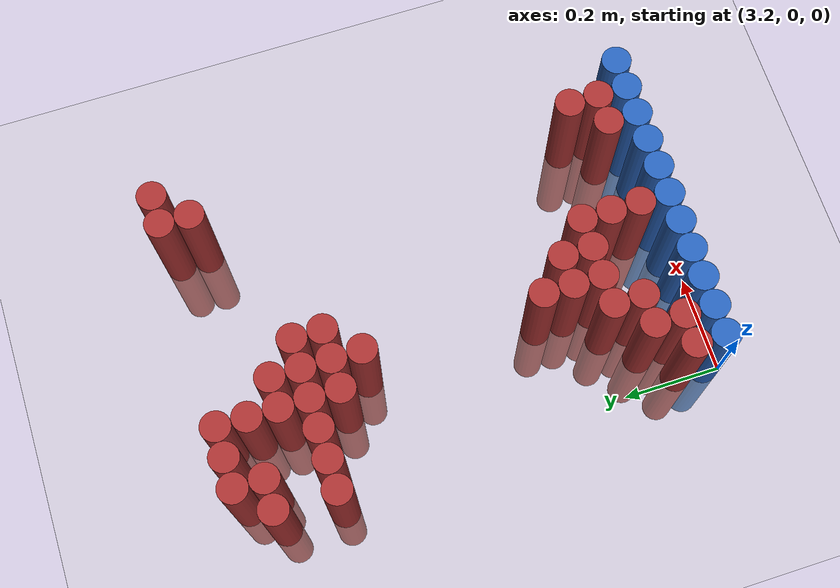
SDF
<sdf version="1.6">
 <world name="default">
  <model name="ground_plane">
   <static>1</static>
   <link name="link">
    <collision name="collision">
     <geometry><plane><normal>0 0 1</normal><size>100 100</size></plane></geometry>
     <surface><friction><ode><mu>100</mu><mu2>50</mu2></ode></friction></surface>
    </collision>
    <visual name="visual">
     <cast_shadows>0</cast_shadows>
     <geometry><plane><normal>0 0 1</normal><size>100 100</size></plane></geometry>
     <material>
      <script><uri>file://media/materials/scripts/gazebo.material</uri><name>Gazebo/Grey</name></script>
     </material>
    </visual>
   </link>
  </model>
  <model name="unit_cylinder_249">
   <static>1</static>
   <pose>3.210000 0.990000 0.000000 0.000000 0.000000 0.000000</pose>
   <link name="link">
    <inertial>
     <mass>1</mass>
     <inertia><ixx>0.145833</ixx><ixy>0</ixy><ixz>0</ixz><iyy>0.145833</iyy><iyz>0</iyz><izz>0.125</izz></inertia>
    </inertial>
    <collision name="collision">
     <geometry><cylinder><radius>0.030000</radius><length>0.5</length></cylinder></geometry>
    </collision>
    <visual name="visual">
     <geometry><cylinder><radius>0.030000</radius><length>0.5</length></cylinder></geometry>
     <material>
      <ambient>0.648000 0.192000 0.192000 1</ambient>
      <diffuse>0.648000 0.192000 0.192000 1</diffuse>
     </material>
     <material>
      <script><name>Gazebo/Grey</name><uri>file://media/materials/scripts/gazebo.material</uri></script>
     </material>
    </visual>
   </link>
  </model>
  <model name="unit_cylinder_250">
   <static>1</static>
   <pose>3.270000 0.990000 0.000000 0.000000 0.000000 0.000000</pose>
   <link name="link">
    <inertial>
     <mass>1</mass>
     <inertia><ixx>0.145833</ixx><ixy>0</ixy><ixz>0</ixz><iyy>0.145833</iyy><iyz>0</iyz><izz>0.125</izz></inertia>
    </inertial>
    <collision name="collision">
     <geometry><cylinder><radius>0.030000</radius><length>0.5</length></cylinder></geometry>
    </collision>
    <visual name="visual">
     <geometry><cylinder><radius>0.030000</radius><length>0.5</length></cylinder></geometry>
     <material>
      <ambient>0.648000 0.192000 0.192000 1</ambient>
      <diffuse>0.648000 0.192000 0.192000 1</diffuse>
     </material>
     <material>
      <script><name>Gazebo/Grey</name><uri>file://media/materials/scripts/gazebo.material</uri></script>
     </material>
    </visual>
   </link>
  </model>
  <model name="unit_cylinder_251">
   <static>1</static>
   <pose>3.330000 0.990000 0.000000 0.000000 0.000000 0.000000</pose>
   <link name="link">
    <inertial>
     <mass>1</mass>
     <inertia><ixx>0.145833</ixx><ixy>0</ixy><ixz>0</ixz><iyy>0.145833</iyy><iyz>0</iyz><izz>0.125</izz></inertia>
    </inertial>
    <collision name="collision">
     <geometry><cylinder><radius>0.030000</radius><length>0.5</length></cylinder></geometry>
    </collision>
    <visual name="visual">
     <geometry><cylinder><radius>0.030000</radius><length>0.5</length></cylinder></geometry>
     <material>
      <ambient>0.648000 0.192000 0.192000 1</ambient>
      <diffuse>0.648000 0.192000 0.192000 1</diffuse>
     </material>
     <material>
      <script><name>Gazebo/Grey</name><uri>file://media/materials/scripts/gazebo.material</uri></script>
     </material>
    </visual>
   </link>
  </model>
  <model name="unit_cylinder_252">
   <static>1</static>
   <pose>3.750000 0.990000 0.000000 0.000000 0.000000 0.000000</pose>
   <link name="link">
    <inertial>
     <mass>1</mass>
     <inertia><ixx>0.145833</ixx><ixy>0</ixy><ixz>0</ixz><iyy>0.145833</iyy><iyz>0</iyz><izz>0.125</izz></inertia>
    </inertial>
    <collision name="collision">
     <geometry><cylinder><radius>0.030000</radius><length>0.5</length></cylinder></geometry>
    </collision>
    <visual name="visual">
     <geometry><cylinder><radius>0.030000</radius><length>0.5</length></cylinder></geometry>
     <material>
      <ambient>0.648000 0.192000 0.192000 1</ambient>
      <diffuse>0.648000 0.192000 0.192000 1</diffuse>
     </material>
     <material>
      <script><name>Gazebo/Grey</name><uri>file://media/materials/scripts/gazebo.material</uri></script>
     </material>
    </visual>
   </link>
  </model>
  <model name="unit_cylinder_253">
   <static>1</static>
   <pose>3.810000 0.990000 0.000000 0.000000 0.000000 0.000000</pose>
   <link name="link">
    <inertial>
     <mass>1</mass>
     <inertia><ixx>0.145833</ixx><ixy>0</ixy><ixz>0</ixz><iyy>0.145833</iyy><iyz>0</iyz><izz>0.125</izz></inertia>
    </inertial>
    <collision name="collision">
     <geometry><cylinder><radius>0.030000</radius><length>0.5</length></cylinder></geometry>
    </collision>
    <visual name="visual">
     <geometry><cylinder><radius>0.030000</radius><length>0.5</length></cylinder></geometry>
     <material>
      <ambient>0.648000 0.192000 0.192000 1</ambient>
      <diffuse>0.648000 0.192000 0.192000 1</diffuse>
     </material>
     <material>
      <script><name>Gazebo/Grey</name><uri>file://media/materials/scripts/gazebo.material</uri></script>
     </material>
    </visual>
   </link>
  </model>
  <model name="unit_cylinder_264">
   <static>1</static>
   <pose>3.150000 0.930000 0.000000 0.000000 0.000000 0.000000</pose>
   <link name="link">
    <inertial>
     <mass>1</mass>
     <inertia><ixx>0.145833</ixx><ixy>0</ixy><ixz>0</ixz><iyy>0.145833</iyy><iyz>0</iyz><izz>0.125</izz></inertia>
    </inertial>
    <collision name="collision">
     <geometry><cylinder><radius>0.030000</radius><length>0.5</length></cylinder></geometry>
    </collision>
    <visual name="visual">
     <geometry><cylinder><radius>0.030000</radius><length>0.5</length></cylinder></geometry>
     <material>
      <ambient>0.648000 0.192000 0.192000 1</ambient>
      <diffuse>0.648000 0.192000 0.192000 1</diffuse>
     </material>
     <material>
      <script><name>Gazebo/Grey</name><uri>file://media/materials/scripts/gazebo.material</uri></script>
     </material>
    </visual>
   </link>
  </model>
  <model name="unit_cylinder_265">
   <static>1</static>
   <pose>3.210000 0.930000 0.000000 0.000000 0.000000 0.000000</pose>
   <link name="link">
    <inertial>
     <mass>1</mass>
     <inertia><ixx>0.145833</ixx><ixy>0</ixy><ixz>0</ixz><iyy>0.145833</iyy><iyz>0</iyz><izz>0.125</izz></inertia>
    </inertial>
    <collision name="collision">
     <geometry><cylinder><radius>0.030000</radius><length>0.5</length></cylinder></geometry>
    </collision>
    <visual name="visual">
     <geometry><cylinder><radius>0.030000</radius><length>0.5</length></cylinder></geometry>
     <material>
      <ambient>0.648000 0.192000 0.192000 1</ambient>
      <diffuse>0.648000 0.192000 0.192000 1</diffuse>
     </material>
     <material>
      <script><name>Gazebo/Grey</name><uri>file://media/materials/scripts/gazebo.material</uri></script>
     </material>
    </visual>
   </link>
  </model>
  <model name="unit_cylinder_266">
   <static>1</static>
   <pose>3.330000 0.930000 0.000000 0.000000 0.000000 0.000000</pose>
   <link name="link">
    <inertial>
     <mass>1</mass>
     <inertia><ixx>0.145833</ixx><ixy>0</ixy><ixz>0</ixz><iyy>0.145833</iyy><iyz>0</iyz><izz>0.125</izz></inertia>
    </inertial>
    <collision name="collision">
     <geometry><cylinder><radius>0.030000</radius><length>0.5</length></cylinder></geometry>
    </collision>
    <visual name="visual">
     <geometry><cylinder><radius>0.030000</radius><length>0.5</length></cylinder></geometry>
     <material>
      <ambient>0.648000 0.192000 0.192000 1</ambient>
      <diffuse>0.648000 0.192000 0.192000 1</diffuse>
     </material>
     <material>
      <script><name>Gazebo/Grey</name><uri>file://media/materials/scripts/gazebo.material</uri></script>
     </material>
    </visual>
   </link>
  </model>
  <model name="unit_cylinder_267">
   <static>1</static>
   <pose>3.750000 0.930000 0.000000 0.000000 0.000000 0.000000</pose>
   <link name="link">
    <inertial>
     <mass>1</mass>
     <inertia><ixx>0.145833</ixx><ixy>0</ixy><ixz>0</ixz><iyy>0.145833</iyy><iyz>0</iyz><izz>0.125</izz></inertia>
    </inertial>
    <collision name="collision">
     <geometry><cylinder><radius>0.030000</radius><length>0.5</length></cylinder></geometry>
    </collision>
    <visual name="visual">
     <geometry><cylinder><radius>0.030000</radius><length>0.5</length></cylinder></geometry>
     <material>
      <ambient>0.648000 0.192000 0.192000 1</ambient>
      <diffuse>0.648000 0.192000 0.192000 1</diffuse>
     </material>
     <material>
      <script><name>Gazebo/Grey</name><uri>file://media/materials/scripts/gazebo.material</uri></script>
     </material>
    </visual>
   </link>
  </model>
  <model name="unit_cylinder_277">
   <static>1</static>
   <pose>3.330000 0.870000 0.000000 0.000000 0.000000 0.000000</pose>
   <link name="link">
    <inertial>
     <mass>1</mass>
     <inertia><ixx>0.145833</ixx><ixy>0</ixy><ixz>0</ixz><iyy>0.145833</iyy><iyz>0</iyz><izz>0.125</izz></inertia>
    </inertial>
    <collision name="collision">
     <geometry><cylinder><radius>0.030000</radius><length>0.5</length></cylinder></geometry>
    </collision>
    <visual name="visual">
     <geometry><cylinder><radius>0.030000</radius><length>0.5</length></cylinder></geometry>
     <material>
      <ambient>0.648000 0.192000 0.192000 1</ambient>
      <diffuse>0.648000 0.192000 0.192000 1</diffuse>
     </material>
     <material>
      <script><name>Gazebo/Grey</name><uri>file://media/materials/scripts/gazebo.material</uri></script>
     </material>
    </visual>
   </link>
  </model>
  <model name="unit_cylinder_278">
   <static>1</static>
   <pose>3.390000 0.870000 0.000000 0.000000 0.000000 0.000000</pose>
   <link name="link">
    <inertial>
     <mass>1</mass>
     <inertia><ixx>0.145833</ixx><ixy>0</ixy><ixz>0</ixz><iyy>0.145833</iyy><iyz>0</iyz><izz>0.125</izz></inertia>
    </inertial>
    <collision name="collision">
     <geometry><cylinder><radius>0.030000</radius><length>0.5</length></cylinder></geometry>
    </collision>
    <visual name="visual">
     <geometry><cylinder><radius>0.030000</radius><length>0.5</length></cylinder></geometry>
     <material>
      <ambient>0.648000 0.192000 0.192000 1</ambient>
      <diffuse>0.648000 0.192000 0.192000 1</diffuse>
     </material>
     <material>
      <script><name>Gazebo/Grey</name><uri>file://media/materials/scripts/gazebo.material</uri></script>
     </material>
    </visual>
   </link>
  </model>
  <model name="unit_cylinder_283">
   <static>1</static>
   <pose>3.150000 0.810000 0.000000 0.000000 0.000000 0.000000</pose>
   <link name="link">
    <inertial>
     <mass>1</mass>
     <inertia><ixx>0.145833</ixx><ixy>0</ixy><ixz>0</ixz><iyy>0.145833</iyy><iyz>0</iyz><izz>0.125</izz></inertia>
    </inertial>
    <collision name="collision">
     <geometry><cylinder><radius>0.030000</radius><length>0.5</length></cylinder></geometry>
    </collision>
    <visual name="visual">
     <geometry><cylinder><radius>0.030000</radius><length>0.5</length></cylinder></geometry>
     <material>
      <ambient>0.648000 0.192000 0.192000 1</ambient>
      <diffuse>0.648000 0.192000 0.192000 1</diffuse>
     </material>
     <material>
      <script><name>Gazebo/Grey</name><uri>file://media/materials/scripts/gazebo.material</uri></script>
     </material>
    </visual>
   </link>
  </model>
  <model name="unit_cylinder_284">
   <static>1</static>
   <pose>3.210000 0.810000 0.000000 0.000000 0.000000 0.000000</pose>
   <link name="link">
    <inertial>
     <mass>1</mass>
     <inertia><ixx>0.145833</ixx><ixy>0</ixy><ixz>0</ixz><iyy>0.145833</iyy><iyz>0</iyz><izz>0.125</izz></inertia>
    </inertial>
    <collision name="collision">
     <geometry><cylinder><radius>0.030000</radius><length>0.5</length></cylinder></geometry>
    </collision>
    <visual name="visual">
     <geometry><cylinder><radius>0.030000</radius><length>0.5</length></cylinder></geometry>
     <material>
      <ambient>0.648000 0.192000 0.192000 1</ambient>
      <diffuse>0.648000 0.192000 0.192000 1</diffuse>
     </material>
     <material>
      <script><name>Gazebo/Grey</name><uri>file://media/materials/scripts/gazebo.material</uri></script>
     </material>
    </visual>
   </link>
  </model>
  <model name="unit_cylinder_285">
   <static>1</static>
   <pose>3.270000 0.810000 0.000000 0.000000 0.000000 0.000000</pose>
   <link name="link">
    <inertial>
     <mass>1</mass>
     <inertia><ixx>0.145833</ixx><ixy>0</ixy><ixz>0</ixz><iyy>0.145833</iyy><iyz>0</iyz><izz>0.125</izz></inertia>
    </inertial>
    <collision name="collision">
     <geometry><cylinder><radius>0.030000</radius><length>0.5</length></cylinder></geometry>
    </collision>
    <visual name="visual">
     <geometry><cylinder><radius>0.030000</radius><length>0.5</length></cylinder></geometry>
     <material>
      <ambient>0.648000 0.192000 0.192000 1</ambient>
      <diffuse>0.648000 0.192000 0.192000 1</diffuse>
     </material>
     <material>
      <script><name>Gazebo/Grey</name><uri>file://media/materials/scripts/gazebo.material</uri></script>
     </material>
    </visual>
   </link>
  </model>
  <model name="unit_cylinder_286">
   <static>1</static>
   <pose>3.330000 0.810000 0.000000 0.000000 0.000000 0.000000</pose>
   <link name="link">
    <inertial>
     <mass>1</mass>
     <inertia><ixx>0.145833</ixx><ixy>0</ixy><ixz>0</ixz><iyy>0.145833</iyy><iyz>0</iyz><izz>0.125</izz></inertia>
    </inertial>
    <collision name="collision">
     <geometry><cylinder><radius>0.030000</radius><length>0.5</length></cylinder></geometry>
    </collision>
    <visual name="visual">
     <geometry><cylinder><radius>0.030000</radius><length>0.5</length></cylinder></geometry>
     <material>
      <ambient>0.648000 0.192000 0.192000 1</ambient>
      <diffuse>0.648000 0.192000 0.192000 1</diffuse>
     </material>
     <material>
      <script><name>Gazebo/Grey</name><uri>file://media/materials/scripts/gazebo.material</uri></script>
     </material>
    </visual>
   </link>
  </model>
  <model name="unit_cylinder_287">
   <static>1</static>
   <pose>3.390000 0.810000 0.000000 0.000000 0.000000 0.000000</pose>
   <link name="link">
    <inertial>
     <mass>1</mass>
     <inertia><ixx>0.145833</ixx><ixy>0</ixy><ixz>0</ixz><iyy>0.145833</iyy><iyz>0</iyz><izz>0.125</izz></inertia>
    </inertial>
    <collision name="collision">
     <geometry><cylinder><radius>0.030000</radius><length>0.5</length></cylinder></geometry>
    </collision>
    <visual name="visual">
     <geometry><cylinder><radius>0.030000</radius><length>0.5</length></cylinder></geometry>
     <material>
      <ambient>0.648000 0.192000 0.192000 1</ambient>
      <diffuse>0.648000 0.192000 0.192000 1</diffuse>
     </material>
     <material>
      <script><name>Gazebo/Grey</name><uri>file://media/materials/scripts/gazebo.material</uri></script>
     </material>
    </visual>
   </link>
  </model>
  <model name="unit_cylinder_288">
   <static>1</static>
   <pose>3.450000 0.810000 0.000000 0.000000 0.000000 0.000000</pose>
   <link name="link">
    <inertial>
     <mass>1</mass>
     <inertia><ixx>0.145833</ixx><ixy>0</ixy><ixz>0</ixz><iyy>0.145833</iyy><iyz>0</iyz><izz>0.125</izz></inertia>
    </inertial>
    <collision name="collision">
     <geometry><cylinder><radius>0.030000</radius><length>0.5</length></cylinder></geometry>
    </collision>
    <visual name="visual">
     <geometry><cylinder><radius>0.030000</radius><length>0.5</length></cylinder></geometry>
     <material>
      <ambient>0.648000 0.192000 0.192000 1</ambient>
      <diffuse>0.648000 0.192000 0.192000 1</diffuse>
     </material>
     <material>
      <script><name>Gazebo/Grey</name><uri>file://media/materials/scripts/gazebo.material</uri></script>
     </material>
    </visual>
   </link>
  </model>
  <model name="unit_cylinder_291">
   <static>1</static>
   <pose>3.330000 0.750000 0.000000 0.000000 0.000000 0.000000</pose>
   <link name="link">
    <inertial>
     <mass>1</mass>
     <inertia><ixx>0.145833</ixx><ixy>0</ixy><ixz>0</ixz><iyy>0.145833</iyy><iyz>0</iyz><izz>0.125</izz></inertia>
    </inertial>
    <collision name="collision">
     <geometry><cylinder><radius>0.030000</radius><length>0.5</length></cylinder></geometry>
    </collision>
    <visual name="visual">
     <geometry><cylinder><radius>0.030000</radius><length>0.5</length></cylinder></geometry>
     <material>
      <ambient>0.648000 0.192000 0.192000 1</ambient>
      <diffuse>0.648000 0.192000 0.192000 1</diffuse>
     </material>
     <material>
      <script><name>Gazebo/Grey</name><uri>file://media/materials/scripts/gazebo.material</uri></script>
     </material>
    </visual>
   </link>
  </model>
  <model name="unit_cylinder_292">
   <static>1</static>
   <pose>3.390000 0.750000 0.000000 0.000000 0.000000 0.000000</pose>
   <link name="link">
    <inertial>
     <mass>1</mass>
     <inertia><ixx>0.145833</ixx><ixy>0</ixy><ixz>0</ixz><iyy>0.145833</iyy><iyz>0</iyz><izz>0.125</izz></inertia>
    </inertial>
    <collision name="collision">
     <geometry><cylinder><radius>0.030000</radius><length>0.5</length></cylinder></geometry>
    </collision>
    <visual name="visual">
     <geometry><cylinder><radius>0.030000</radius><length>0.5</length></cylinder></geometry>
     <material>
      <ambient>0.648000 0.192000 0.192000 1</ambient>
      <diffuse>0.648000 0.192000 0.192000 1</diffuse>
     </material>
     <material>
      <script><name>Gazebo/Grey</name><uri>file://media/materials/scripts/gazebo.material</uri></script>
     </material>
    </visual>
   </link>
  </model>
  <model name="unit_cylinder_293">
   <static>1</static>
   <pose>3.450000 0.750000 0.000000 0.000000 0.000000 0.000000</pose>
   <link name="link">
    <inertial>
     <mass>1</mass>
     <inertia><ixx>0.145833</ixx><ixy>0</ixy><ixz>0</ixz><iyy>0.145833</iyy><iyz>0</iyz><izz>0.125</izz></inertia>
    </inertial>
    <collision name="collision">
     <geometry><cylinder><radius>0.030000</radius><length>0.5</length></cylinder></geometry>
    </collision>
    <visual name="visual">
     <geometry><cylinder><radius>0.030000</radius><length>0.5</length></cylinder></geometry>
     <material>
      <ambient>0.648000 0.192000 0.192000 1</ambient>
      <diffuse>0.648000 0.192000 0.192000 1</diffuse>
     </material>
     <material>
      <script><name>Gazebo/Grey</name><uri>file://media/materials/scripts/gazebo.material</uri></script>
     </material>
    </visual>
   </link>
  </model>
  <model name="unit_cylinder_294">
   <static>1</static>
   <pose>3.390000 0.690000 0.000000 0.000000 0.000000 0.000000</pose>
   <link name="link">
    <inertial>
     <mass>1</mass>
     <inertia><ixx>0.145833</ixx><ixy>0</ixy><ixz>0</ixz><iyy>0.145833</iyy><iyz>0</iyz><izz>0.125</izz></inertia>
    </inertial>
    <collision name="collision">
     <geometry><cylinder><radius>0.030000</radius><length>0.5</length></cylinder></geometry>
    </collision>
    <visual name="visual">
     <geometry><cylinder><radius>0.030000</radius><length>0.5</length></cylinder></geometry>
     <material>
      <ambient>0.648000 0.192000 0.192000 1</ambient>
      <diffuse>0.648000 0.192000 0.192000 1</diffuse>
     </material>
     <material>
      <script><name>Gazebo/Grey</name><uri>file://media/materials/scripts/gazebo.material</uri></script>
     </material>
    </visual>
   </link>
  </model>
  <model name="unit_cylinder_307">
   <static>1</static>
   <pose>3.390000 0.330000 0.000000 0.000000 0.000000 0.000000</pose>
   <link name="link">
    <inertial>
     <mass>1</mass>
     <inertia><ixx>0.145833</ixx><ixy>0</ixy><ixz>0</ixz><iyy>0.145833</iyy><iyz>0</iyz><izz>0.125</izz></inertia>
    </inertial>
    <collision name="collision">
     <geometry><cylinder><radius>0.030000</radius><length>0.5</length></cylinder></geometry>
    </collision>
    <visual name="visual">
     <geometry><cylinder><radius>0.030000</radius><length>0.5</length></cylinder></geometry>
     <material>
      <ambient>0.648000 0.192000 0.192000 1</ambient>
      <diffuse>0.648000 0.192000 0.192000 1</diffuse>
     </material>
     <material>
      <script><name>Gazebo/Grey</name><uri>file://media/materials/scripts/gazebo.material</uri></script>
     </material>
    </visual>
   </link>
  </model>
  <model name="unit_cylinder_310">
   <static>1</static>
   <pose>3.390000 0.270000 0.000000 0.000000 0.000000 0.000000</pose>
   <link name="link">
    <inertial>
     <mass>1</mass>
     <inertia><ixx>0.145833</ixx><ixy>0</ixy><ixz>0</ixz><iyy>0.145833</iyy><iyz>0</iyz><izz>0.125</izz></inertia>
    </inertial>
    <collision name="collision">
     <geometry><cylinder><radius>0.030000</radius><length>0.5</length></cylinder></geometry>
    </collision>
    <visual name="visual">
     <geometry><cylinder><radius>0.030000</radius><length>0.5</length></cylinder></geometry>
     <material>
      <ambient>0.648000 0.192000 0.192000 1</ambient>
      <diffuse>0.648000 0.192000 0.192000 1</diffuse>
     </material>
     <material>
      <script><name>Gazebo/Grey</name><uri>file://media/materials/scripts/gazebo.material</uri></script>
     </material>
    </visual>
   </link>
  </model>
  <model name="unit_cylinder_311">
   <static>1</static>
   <pose>3.450000 0.270000 0.000000 0.000000 0.000000 0.000000</pose>
   <link name="link">
    <inertial>
     <mass>1</mass>
     <inertia><ixx>0.145833</ixx><ixy>0</ixy><ixz>0</ixz><iyy>0.145833</iyy><iyz>0</iyz><izz>0.125</izz></inertia>
    </inertial>
    <collision name="collision">
     <geometry><cylinder><radius>0.030000</radius><length>0.5</length></cylinder></geometry>
    </collision>
    <visual name="visual">
     <geometry><cylinder><radius>0.030000</radius><length>0.5</length></cylinder></geometry>
     <material>
      <ambient>0.648000 0.192000 0.192000 1</ambient>
      <diffuse>0.648000 0.192000 0.192000 1</diffuse>
     </material>
     <material>
      <script><name>Gazebo/Grey</name><uri>file://media/materials/scripts/gazebo.material</uri></script>
     </material>
    </visual>
   </link>
  </model>
  <model name="unit_cylinder_317">
   <static>1</static>
   <pose>3.330000 0.210000 0.000000 0.000000 0.000000 0.000000</pose>
   <link name="link">
    <inertial>
     <mass>1</mass>
     <inertia><ixx>0.145833</ixx><ixy>0</ixy><ixz>0</ixz><iyy>0.145833</iyy><iyz>0</iyz><izz>0.125</izz></inertia>
    </inertial>
    <collision name="collision">
     <geometry><cylinder><radius>0.030000</radius><length>0.5</length></cylinder></geometry>
    </collision>
    <visual name="visual">
     <geometry><cylinder><radius>0.030000</radius><length>0.5</length></cylinder></geometry>
     <material>
      <ambient>0.648000 0.192000 0.192000 1</ambient>
      <diffuse>0.648000 0.192000 0.192000 1</diffuse>
     </material>
     <material>
      <script><name>Gazebo/Grey</name><uri>file://media/materials/scripts/gazebo.material</uri></script>
     </material>
    </visual>
   </link>
  </model>
  <model name="unit_cylinder_318">
   <static>1</static>
   <pose>3.390000 0.210000 0.000000 0.000000 0.000000 0.000000</pose>
   <link name="link">
    <inertial>
     <mass>1</mass>
     <inertia><ixx>0.145833</ixx><ixy>0</ixy><ixz>0</ixz><iyy>0.145833</iyy><iyz>0</iyz><izz>0.125</izz></inertia>
    </inertial>
    <collision name="collision">
     <geometry><cylinder><radius>0.030000</radius><length>0.5</length></cylinder></geometry>
    </collision>
    <visual name="visual">
     <geometry><cylinder><radius>0.030000</radius><length>0.5</length></cylinder></geometry>
     <material>
      <ambient>0.648000 0.192000 0.192000 1</ambient>
      <diffuse>0.648000 0.192000 0.192000 1</diffuse>
     </material>
     <material>
      <script><name>Gazebo/Grey</name><uri>file://media/materials/scripts/gazebo.material</uri></script>
     </material>
    </visual>
   </link>
  </model>
  <model name="unit_cylinder_319">
   <static>1</static>
   <pose>3.450000 0.210000 0.000000 0.000000 0.000000 0.000000</pose>
   <link name="link">
    <inertial>
     <mass>1</mass>
     <inertia><ixx>0.145833</ixx><ixy>0</ixy><ixz>0</ixz><iyy>0.145833</iyy><iyz>0</iyz><izz>0.125</izz></inertia>
    </inertial>
    <collision name="collision">
     <geometry><cylinder><radius>0.030000</radius><length>0.5</length></cylinder></geometry>
    </collision>
    <visual name="visual">
     <geometry><cylinder><radius>0.030000</radius><length>0.5</length></cylinder></geometry>
     <material>
      <ambient>0.648000 0.192000 0.192000 1</ambient>
      <diffuse>0.648000 0.192000 0.192000 1</diffuse>
     </material>
     <material>
      <script><name>Gazebo/Grey</name><uri>file://media/materials/scripts/gazebo.material</uri></script>
     </material>
    </visual>
   </link>
  </model>
  <model name="unit_cylinder_320">
   <static>1</static>
   <pose>3.510000 0.210000 0.000000 0.000000 0.000000 0.000000</pose>
   <link name="link">
    <inertial>
     <mass>1</mass>
     <inertia><ixx>0.145833</ixx><ixy>0</ixy><ixz>0</ixz><iyy>0.145833</iyy><iyz>0</iyz><izz>0.125</izz></inertia>
    </inertial>
    <collision name="collision">
     <geometry><cylinder><radius>0.030000</radius><length>0.5</length></cylinder></geometry>
    </collision>
    <visual name="visual">
     <geometry><cylinder><radius>0.030000</radius><length>0.5</length></cylinder></geometry>
     <material>
      <ambient>0.648000 0.192000 0.192000 1</ambient>
      <diffuse>0.648000 0.192000 0.192000 1</diffuse>
     </material>
     <material>
      <script><name>Gazebo/Grey</name><uri>file://media/materials/scripts/gazebo.material</uri></script>
     </material>
    </visual>
   </link>
  </model>
  <model name="unit_cylinder_332">
   <static>1</static>
   <pose>3.270000 0.150000 0.000000 0.000000 0.000000 0.000000</pose>
   <link name="link">
    <inertial>
     <mass>1</mass>
     <inertia><ixx>0.145833</ixx><ixy>0</ixy><ixz>0</ixz><iyy>0.145833</iyy><iyz>0</iyz><izz>0.125</izz></inertia>
    </inertial>
    <collision name="collision">
     <geometry><cylinder><radius>0.030000</radius><length>0.5</length></cylinder></geometry>
    </collision>
    <visual name="visual">
     <geometry><cylinder><radius>0.030000</radius><length>0.5</length></cylinder></geometry>
     <material>
      <ambient>0.648000 0.192000 0.192000 1</ambient>
      <diffuse>0.648000 0.192000 0.192000 1</diffuse>
     </material>
     <material>
      <script><name>Gazebo/Grey</name><uri>file://media/materials/scripts/gazebo.material</uri></script>
     </material>
    </visual>
   </link>
  </model>
  <model name="unit_cylinder_333">
   <static>1</static>
   <pose>3.330000 0.150000 0.000000 0.000000 0.000000 0.000000</pose>
   <link name="link">
    <inertial>
     <mass>1</mass>
     <inertia><ixx>0.145833</ixx><ixy>0</ixy><ixz>0</ixz><iyy>0.145833</iyy><iyz>0</iyz><izz>0.125</izz></inertia>
    </inertial>
    <collision name="collision">
     <geometry><cylinder><radius>0.030000</radius><length>0.5</length></cylinder></geometry>
    </collision>
    <visual name="visual">
     <geometry><cylinder><radius>0.030000</radius><length>0.5</length></cylinder></geometry>
     <material>
      <ambient>0.648000 0.192000 0.192000 1</ambient>
      <diffuse>0.648000 0.192000 0.192000 1</diffuse>
     </material>
     <material>
      <script><name>Gazebo/Grey</name><uri>file://media/materials/scripts/gazebo.material</uri></script>
     </material>
    </visual>
   </link>
  </model>
  <model name="unit_cylinder_334">
   <static>1</static>
   <pose>3.510000 0.150000 0.000000 0.000000 0.000000 0.000000</pose>
   <link name="link">
    <inertial>
     <mass>1</mass>
     <inertia><ixx>0.145833</ixx><ixy>0</ixy><ixz>0</ixz><iyy>0.145833</iyy><iyz>0</iyz><izz>0.125</izz></inertia>
    </inertial>
    <collision name="collision">
     <geometry><cylinder><radius>0.030000</radius><length>0.5</length></cylinder></geometry>
    </collision>
    <visual name="visual">
     <geometry><cylinder><radius>0.030000</radius><length>0.5</length></cylinder></geometry>
     <material>
      <ambient>0.648000 0.192000 0.192000 1</ambient>
      <diffuse>0.648000 0.192000 0.192000 1</diffuse>
     </material>
     <material>
      <script><name>Gazebo/Grey</name><uri>file://media/materials/scripts/gazebo.material</uri></script>
     </material>
    </visual>
   </link>
  </model>
  <model name="unit_cylinder_335">
   <static>1</static>
   <pose>3.750000 0.150000 0.000000 0.000000 0.000000 0.000000</pose>
   <link name="link">
    <inertial>
     <mass>1</mass>
     <inertia><ixx>0.145833</ixx><ixy>0</ixy><ixz>0</ixz><iyy>0.145833</iyy><iyz>0</iyz><izz>0.125</izz></inertia>
    </inertial>
    <collision name="collision">
     <geometry><cylinder><radius>0.030000</radius><length>0.5</length></cylinder></geometry>
    </collision>
    <visual name="visual">
     <geometry><cylinder><radius>0.030000</radius><length>0.5</length></cylinder></geometry>
     <material>
      <ambient>0.648000 0.192000 0.192000 1</ambient>
      <diffuse>0.648000 0.192000 0.192000 1</diffuse>
     </material>
     <material>
      <script><name>Gazebo/Grey</name><uri>file://media/materials/scripts/gazebo.material</uri></script>
     </material>
    </visual>
   </link>
  </model>
  <model name="unit_cylinder_350">
   <static>1</static>
   <pose>3.210000 0.090000 0.000000 0.000000 0.000000 0.000000</pose>
   <link name="link">
    <inertial>
     <mass>1</mass>
     <inertia><ixx>0.145833</ixx><ixy>0</ixy><ixz>0</ixz><iyy>0.145833</iyy><iyz>0</iyz><izz>0.125</izz></inertia>
    </inertial>
    <collision name="collision">
     <geometry><cylinder><radius>0.030000</radius><length>0.5</length></cylinder></geometry>
    </collision>
    <visual name="visual">
     <geometry><cylinder><radius>0.030000</radius><length>0.5</length></cylinder></geometry>
     <material>
      <ambient>0.648000 0.192000 0.192000 1</ambient>
      <diffuse>0.648000 0.192000 0.192000 1</diffuse>
     </material>
     <material>
      <script><name>Gazebo/Grey</name><uri>file://media/materials/scripts/gazebo.material</uri></script>
     </material>
    </visual>
   </link>
  </model>
  <model name="unit_cylinder_351">
   <static>1</static>
   <pose>3.270000 0.090000 0.000000 0.000000 0.000000 0.000000</pose>
   <link name="link">
    <inertial>
     <mass>1</mass>
     <inertia><ixx>0.145833</ixx><ixy>0</ixy><ixz>0</ixz><iyy>0.145833</iyy><iyz>0</iyz><izz>0.125</izz></inertia>
    </inertial>
    <collision name="collision">
     <geometry><cylinder><radius>0.030000</radius><length>0.5</length></cylinder></geometry>
    </collision>
    <visual name="visual">
     <geometry><cylinder><radius>0.030000</radius><length>0.5</length></cylinder></geometry>
     <material>
      <ambient>0.648000 0.192000 0.192000 1</ambient>
      <diffuse>0.648000 0.192000 0.192000 1</diffuse>
     </material>
     <material>
      <script><name>Gazebo/Grey</name><uri>file://media/materials/scripts/gazebo.material</uri></script>
     </material>
    </visual>
   </link>
  </model>
  <model name="unit_cylinder_352">
   <static>1</static>
   <pose>3.510000 0.090000 0.000000 0.000000 0.000000 0.000000</pose>
   <link name="link">
    <inertial>
     <mass>1</mass>
     <inertia><ixx>0.145833</ixx><ixy>0</ixy><ixz>0</ixz><iyy>0.145833</iyy><iyz>0</iyz><izz>0.125</izz></inertia>
    </inertial>
    <collision name="collision">
     <geometry><cylinder><radius>0.030000</radius><length>0.5</length></cylinder></geometry>
    </collision>
    <visual name="visual">
     <geometry><cylinder><radius>0.030000</radius><length>0.5</length></cylinder></geometry>
     <material>
      <ambient>0.648000 0.192000 0.192000 1</ambient>
      <diffuse>0.648000 0.192000 0.192000 1</diffuse>
     </material>
     <material>
      <script><name>Gazebo/Grey</name><uri>file://media/materials/scripts/gazebo.material</uri></script>
     </material>
    </visual>
   </link>
  </model>
  <model name="unit_cylinder_353">
   <static>1</static>
   <pose>3.690000 0.090000 0.000000 0.000000 0.000000 0.000000</pose>
   <link name="link">
    <inertial>
     <mass>1</mass>
     <inertia><ixx>0.145833</ixx><ixy>0</ixy><ixz>0</ixz><iyy>0.145833</iyy><iyz>0</iyz><izz>0.125</izz></inertia>
    </inertial>
    <collision name="collision">
     <geometry><cylinder><radius>0.030000</radius><length>0.5</length></cylinder></geometry>
    </collision>
    <visual name="visual">
     <geometry><cylinder><radius>0.030000</radius><length>0.5</length></cylinder></geometry>
     <material>
      <ambient>0.648000 0.192000 0.192000 1</ambient>
      <diffuse>0.648000 0.192000 0.192000 1</diffuse>
     </material>
     <material>
      <script><name>Gazebo/Grey</name><uri>file://media/materials/scripts/gazebo.material</uri></script>
     </material>
    </visual>
   </link>
  </model>
  <model name="unit_cylinder_354">
   <static>1</static>
   <pose>3.750000 0.090000 0.000000 0.000000 0.000000 0.000000</pose>
   <link name="link">
    <inertial>
     <mass>1</mass>
     <inertia><ixx>0.145833</ixx><ixy>0</ixy><ixz>0</ixz><iyy>0.145833</iyy><iyz>0</iyz><izz>0.125</izz></inertia>
    </inertial>
    <collision name="collision">
     <geometry><cylinder><radius>0.030000</radius><length>0.5</length></cylinder></geometry>
    </collision>
    <visual name="visual">
     <geometry><cylinder><radius>0.030000</radius><length>0.5</length></cylinder></geometry>
     <material>
      <ambient>0.648000 0.192000 0.192000 1</ambient>
      <diffuse>0.648000 0.192000 0.192000 1</diffuse>
     </material>
     <material>
      <script><name>Gazebo/Grey</name><uri>file://media/materials/scripts/gazebo.material</uri></script>
     </material>
    </visual>
   </link>
  </model>
  <model name="unit_cylinder_374">
   <static>1</static>
   <pose>3.210000 0.030000 0.000000 0.000000 0.000000 0.000000</pose>
   <link name="link">
    <inertial>
     <mass>1</mass>
     <inertia><ixx>0.145833</ixx><ixy>0</ixy><ixz>0</ixz><iyy>0.145833</iyy><iyz>0</iyz><izz>0.125</izz></inertia>
    </inertial>
    <collision name="collision">
     <geometry><cylinder><radius>0.030000</radius><length>0.5</length></cylinder></geometry>
    </collision>
    <visual name="visual">
     <geometry><cylinder><radius>0.030000</radius><length>0.5</length></cylinder></geometry>
     <material>
      <ambient>0.152000 0.379000 0.720000 1</ambient>
      <diffuse>0.152000 0.379000 0.720000 1</diffuse>
     </material>
     <material>
      <script><name>Gazebo/Grey</name><uri>file://media/materials/scripts/gazebo.material</uri></script>
     </material>
    </visual>
   </link>
  </model>
  <model name="unit_cylinder_375">
   <static>1</static>
   <pose>3.270000 0.030000 0.000000 0.000000 0.000000 0.000000</pose>
   <link name="link">
    <inertial>
     <mass>1</mass>
     <inertia><ixx>0.145833</ixx><ixy>0</ixy><ixz>0</ixz><iyy>0.145833</iyy><iyz>0</iyz><izz>0.125</izz></inertia>
    </inertial>
    <collision name="collision">
     <geometry><cylinder><radius>0.030000</radius><length>0.5</length></cylinder></geometry>
    </collision>
    <visual name="visual">
     <geometry><cylinder><radius>0.030000</radius><length>0.5</length></cylinder></geometry>
     <material>
      <ambient>0.152000 0.379000 0.720000 1</ambient>
      <diffuse>0.152000 0.379000 0.720000 1</diffuse>
     </material>
     <material>
      <script><name>Gazebo/Grey</name><uri>file://media/materials/scripts/gazebo.material</uri></script>
     </material>
    </visual>
   </link>
  </model>
  <model name="unit_cylinder_376">
   <static>1</static>
   <pose>3.330000 0.030000 0.000000 0.000000 0.000000 0.000000</pose>
   <link name="link">
    <inertial>
     <mass>1</mass>
     <inertia><ixx>0.145833</ixx><ixy>0</ixy><ixz>0</ixz><iyy>0.145833</iyy><iyz>0</iyz><izz>0.125</izz></inertia>
    </inertial>
    <collision name="collision">
     <geometry><cylinder><radius>0.030000</radius><length>0.5</length></cylinder></geometry>
    </collision>
    <visual name="visual">
     <geometry><cylinder><radius>0.030000</radius><length>0.5</length></cylinder></geometry>
     <material>
      <ambient>0.152000 0.379000 0.720000 1</ambient>
      <diffuse>0.152000 0.379000 0.720000 1</diffuse>
     </material>
     <material>
      <script><name>Gazebo/Grey</name><uri>file://media/materials/scripts/gazebo.material</uri></script>
     </material>
    </visual>
   </link>
  </model>
  <model name="unit_cylinder_377">
   <static>1</static>
   <pose>3.390000 0.030000 0.000000 0.000000 0.000000 0.000000</pose>
   <link name="link">
    <inertial>
     <mass>1</mass>
     <inertia><ixx>0.145833</ixx><ixy>0</ixy><ixz>0</ixz><iyy>0.145833</iyy><iyz>0</iyz><izz>0.125</izz></inertia>
    </inertial>
    <collision name="collision">
     <geometry><cylinder><radius>0.030000</radius><length>0.5</length></cylinder></geometry>
    </collision>
    <visual name="visual">
     <geometry><cylinder><radius>0.030000</radius><length>0.5</length></cylinder></geometry>
     <material>
      <ambient>0.152000 0.379000 0.720000 1</ambient>
      <diffuse>0.152000 0.379000 0.720000 1</diffuse>
     </material>
     <material>
      <script><name>Gazebo/Grey</name><uri>file://media/materials/scripts/gazebo.material</uri></script>
     </material>
    </visual>
   </link>
  </model>
  <model name="unit_cylinder_378">
   <static>1</static>
   <pose>3.450000 0.030000 0.000000 0.000000 0.000000 0.000000</pose>
   <link name="link">
    <inertial>
     <mass>1</mass>
     <inertia><ixx>0.145833</ixx><ixy>0</ixy><ixz>0</ixz><iyy>0.145833</iyy><iyz>0</iyz><izz>0.125</izz></inertia>
    </inertial>
    <collision name="collision">
     <geometry><cylinder><radius>0.030000</radius><length>0.5</length></cylinder></geometry>
    </collision>
    <visual name="visual">
     <geometry><cylinder><radius>0.030000</radius><length>0.5</length></cylinder></geometry>
     <material>
      <ambient>0.152000 0.379000 0.720000 1</ambient>
      <diffuse>0.152000 0.379000 0.720000 1</diffuse>
     </material>
     <material>
      <script><name>Gazebo/Grey</name><uri>file://media/materials/scripts/gazebo.material</uri></script>
     </material>
    </visual>
   </link>
  </model>
  <model name="unit_cylinder_379">
   <static>1</static>
   <pose>3.510000 0.030000 0.000000 0.000000 0.000000 0.000000</pose>
   <link name="link">
    <inertial>
     <mass>1</mass>
     <inertia><ixx>0.145833</ixx><ixy>0</ixy><ixz>0</ixz><iyy>0.145833</iyy><iyz>0</iyz><izz>0.125</izz></inertia>
    </inertial>
    <collision name="collision">
     <geometry><cylinder><radius>0.030000</radius><length>0.5</length></cylinder></geometry>
    </collision>
    <visual name="visual">
     <geometry><cylinder><radius>0.030000</radius><length>0.5</length></cylinder></geometry>
     <material>
      <ambient>0.152000 0.379000 0.720000 1</ambient>
      <diffuse>0.152000 0.379000 0.720000 1</diffuse>
     </material>
     <material>
      <script><name>Gazebo/Grey</name><uri>file://media/materials/scripts/gazebo.material</uri></script>
     </material>
    </visual>
   </link>
  </model>
  <model name="unit_cylinder_380">
   <static>1</static>
   <pose>3.570000 0.030000 0.000000 0.000000 0.000000 0.000000</pose>
   <link name="link">
    <inertial>
     <mass>1</mass>
     <inertia><ixx>0.145833</ixx><ixy>0</ixy><ixz>0</ixz><iyy>0.145833</iyy><iyz>0</iyz><izz>0.125</izz></inertia>
    </inertial>
    <collision name="collision">
     <geometry><cylinder><radius>0.030000</radius><length>0.5</length></cylinder></geometry>
    </collision>
    <visual name="visual">
     <geometry><cylinder><radius>0.030000</radius><length>0.5</length></cylinder></geometry>
     <material>
      <ambient>0.152000 0.379000 0.720000 1</ambient>
      <diffuse>0.152000 0.379000 0.720000 1</diffuse>
     </material>
     <material>
      <script><name>Gazebo/Grey</name><uri>file://media/materials/scripts/gazebo.material</uri></script>
     </material>
    </visual>
   </link>
  </model>
  <model name="unit_cylinder_381">
   <static>1</static>
   <pose>3.630000 0.030000 0.000000 0.000000 0.000000 0.000000</pose>
   <link name="link">
    <inertial>
     <mass>1</mass>
     <inertia><ixx>0.145833</ixx><ixy>0</ixy><ixz>0</ixz><iyy>0.145833</iyy><iyz>0</iyz><izz>0.125</izz></inertia>
    </inertial>
    <collision name="collision">
     <geometry><cylinder><radius>0.030000</radius><length>0.5</length></cylinder></geometry>
    </collision>
    <visual name="visual">
     <geometry><cylinder><radius>0.030000</radius><length>0.5</length></cylinder></geometry>
     <material>
      <ambient>0.152000 0.379000 0.720000 1</ambient>
      <diffuse>0.152000 0.379000 0.720000 1</diffuse>
     </material>
     <material>
      <script><name>Gazebo/Grey</name><uri>file://media/materials/scripts/gazebo.material</uri></script>
     </material>
    </visual>
   </link>
  </model>
  <model name="unit_cylinder_382">
   <static>1</static>
   <pose>3.690000 0.030000 0.000000 0.000000 0.000000 0.000000</pose>
   <link name="link">
    <inertial>
     <mass>1</mass>
     <inertia><ixx>0.145833</ixx><ixy>0</ixy><ixz>0</ixz><iyy>0.145833</iyy><iyz>0</iyz><izz>0.125</izz></inertia>
    </inertial>
    <collision name="collision">
     <geometry><cylinder><radius>0.030000</radius><length>0.5</length></cylinder></geometry>
    </collision>
    <visual name="visual">
     <geometry><cylinder><radius>0.030000</radius><length>0.5</length></cylinder></geometry>
     <material>
      <ambient>0.152000 0.379000 0.720000 1</ambient>
      <diffuse>0.152000 0.379000 0.720000 1</diffuse>
     </material>
     <material>
      <script><name>Gazebo/Grey</name><uri>file://media/materials/scripts/gazebo.material</uri></script>
     </material>
    </visual>
   </link>
  </model>
  <model name="unit_cylinder_383">
   <static>1</static>
   <pose>3.750000 0.030000 0.000000 0.000000 0.000000 0.000000</pose>
   <link name="link">
    <inertial>
     <mass>1</mass>
     <inertia><ixx>0.145833</ixx><ixy>0</ixy><ixz>0</ixz><iyy>0.145833</iyy><iyz>0</iyz><izz>0.125</izz></inertia>
    </inertial>
    <collision name="collision">
     <geometry><cylinder><radius>0.030000</radius><length>0.5</length></cylinder></geometry>
    </collision>
    <visual name="visual">
     <geometry><cylinder><radius>0.030000</radius><length>0.5</length></cylinder></geometry>
     <material>
      <ambient>0.152000 0.379000 0.720000 1</ambient>
      <diffuse>0.152000 0.379000 0.720000 1</diffuse>
     </material>
     <material>
      <script><name>Gazebo/Grey</name><uri>file://media/materials/scripts/gazebo.material</uri></script>
     </material>
    </visual>
   </link>
  </model>
  <model name="unit_cylinder_384">
   <static>1</static>
   <pose>3.810000 0.030000 0.000000 0.000000 0.000000 0.000000</pose>
   <link name="link">
    <inertial>
     <mass>1</mass>
     <inertia><ixx>0.145833</ixx><ixy>0</ixy><ixz>0</ixz><iyy>0.145833</iyy><iyz>0</iyz><izz>0.125</izz></inertia>
    </inertial>
    <collision name="collision">
     <geometry><cylinder><radius>0.030000</radius><length>0.5</length></cylinder></geometry>
    </collision>
    <visual name="visual">
     <geometry><cylinder><radius>0.030000</radius><length>0.5</length></cylinder></geometry>
     <material>
      <ambient>0.152000 0.379000 0.720000 1</ambient>
      <diffuse>0.152000 0.379000 0.720000 1</diffuse>
     </material>
     <material>
      <script><name>Gazebo/Grey</name><uri>file://media/materials/scripts/gazebo.material</uri></script>
     </material>
    </visual>
   </link>
  </model>
 </world>
</sdf>
